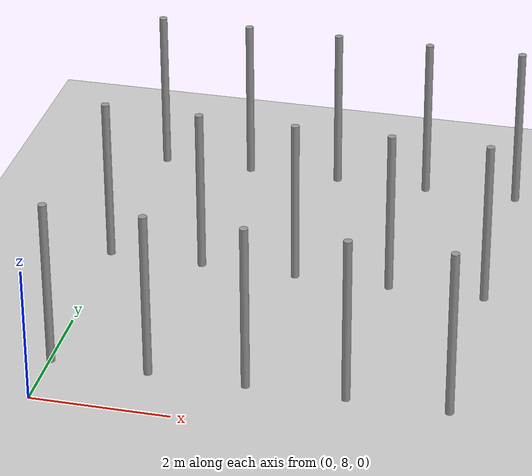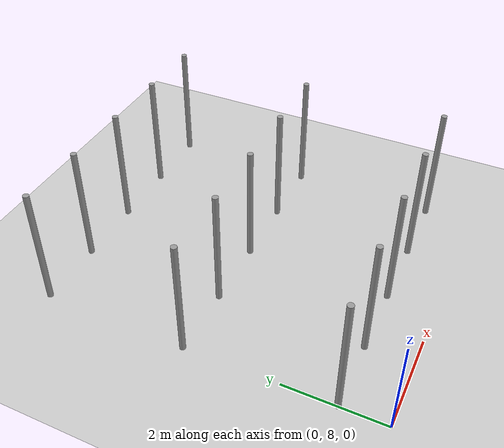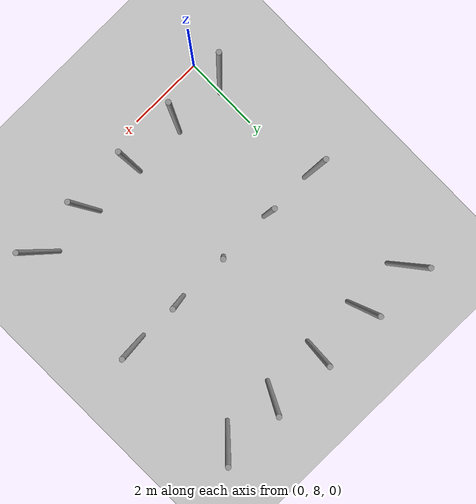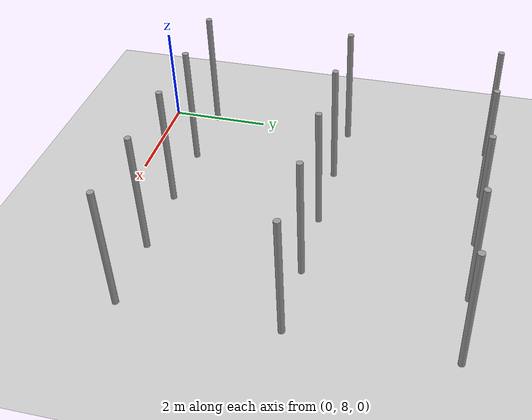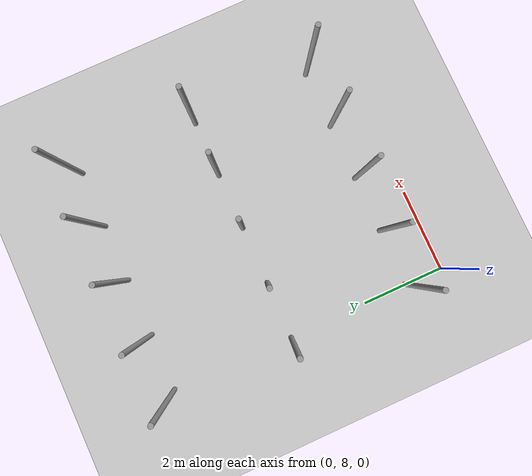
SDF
<sdf version="1.6">
 <world name="default">
  <model name="ground_plane">
   <static>1</static>
   <link name="link">
    <collision name="collision">
     <geometry><plane><normal>0 0 1</normal><size>100 100</size></plane></geometry>
     <surface><friction><ode><mu>100</mu><mu2>50</mu2></ode></friction></surface>
    </collision>
    <visual name="visual">
     <cast_shadows>0</cast_shadows>
     <geometry><plane><normal>0 0 1</normal><size>100 100</size></plane></geometry>
     <material>
      <script><uri>file://media/materials/scripts/gazebo.material</uri><name>Gazebo/Grey</name></script>
     </material>
    </visual>
   </link>
  </model>
  <model name="pole_0">
   <link name="link_0">
    <inertial>
     <mass>0.0364582</mass>
     <inertia>
      <ixx>0.00312124</ixx>
      <ixy>0</ixy>
      <ixz>0</ixz>
      <iyy>0.00312124</iyy>
      <iyz>0</iyz>
      <izz>0.00016615</izz>
     </inertia>
    </inertial>
    <visual name="visual">
     <geometry><cylinder><radius>0.06</radius><length>2.5</length></cylinder></geometry>
     <material>
      <lighting>1</lighting>
      <script><uri>file://media/materials/scripts/gazebo.material</uri><name>Gazebo/Grey</name></script>
      <ambient>0.3 0.3 0.3 1</ambient>
      <diffuse>0.7 0.7 0.7 1</diffuse>
      <specular>0.01 0.01 0.01 1</specular>
      <emissive>0 0 0 1</emissive>
      <shader type="vertex"><normal_map>__default__</normal_map></shader>
     </material>
    </visual>
    <collision name="collision">
     <geometry><cylinder><radius>0.06</radius><length>2.5</length></cylinder></geometry>
     <surface>
      <friction>
       <ode><mu>1</mu><mu2>1</mu2><fdir1>0 0 0</fdir1><slip1>0</slip1><slip2>0</slip2></ode>
       <torsional>
        <coefficient>1</coefficient>
        <patch_radius>0</patch_radius>
        <surface_radius>0</surface_radius>
        <use_patch_radius>1</use_patch_radius>
        <ode><slip>0</slip></ode>
       </torsional>
      </friction>
      <bounce><restitution_coefficient>0</restitution_coefficient><threshold>1e+06</threshold></bounce>
      <contact>
       <collide_without_contact>0</collide_without_contact>
       <collide_without_contact_bitmask>1</collide_without_contact_bitmask>
       <collide_bitmask>1</collide_bitmask>
       <ode>
        <soft_cfm>0</soft_cfm>
        <soft_erp>0.2</soft_erp>
        <kp>1e+13</kp>
        <kd>1</kd>
        <max_vel>0.01</max_vel>
        <min_depth>0</min_depth>
       </ode>
       <bullet>
        <split_impulse>1</split_impulse>
        <split_impulse_penetration_threshold>-0.01</split_impulse_penetration_threshold>
        <soft_cfm>0</soft_cfm>
        <soft_erp>0.2</soft_erp>
        <kp>1e+13</kp>
        <kd>1</kd>
       </bullet>
      </contact>
     </surface>
    </collision>
   </link>
   <static>0</static>
   <pose>0.01347 8.94117 1.25 0 1e-06 -0.015511</pose>
  </model>
  <model name="pole_1">
   <link name="link_0">
    <inertial>
     <mass>0.0364582</mass>
     <inertia>
      <ixx>0.00312124</ixx>
      <ixy>0</ixy>
      <ixz>0</ixz>
      <iyy>0.00312124</iyy>
      <iyz>0</iyz>
      <izz>0.00016615</izz>
     </inertia>
    </inertial>
    <visual name="visual">
     <geometry><cylinder><radius>0.06</radius><length>2.5</length></cylinder></geometry>
     <material>
      <lighting>1</lighting>
      <script><uri>file://media/materials/scripts/gazebo.material</uri><name>Gazebo/Grey</name></script>
      <ambient>0.3 0.3 0.3 1</ambient>
      <diffuse>0.7 0.7 0.7 1</diffuse>
      <specular>0.01 0.01 0.01 1</specular>
      <emissive>0 0 0 1</emissive>
      <shader type="vertex"><normal_map>__default__</normal_map></shader>
     </material>
    </visual>
    <collision name="collision">
     <geometry><cylinder><radius>0.06</radius><length>2.5</length></cylinder></geometry>
     <surface>
      <friction>
       <ode><mu>1</mu><mu2>1</mu2><fdir1>0 0 0</fdir1><slip1>0</slip1><slip2>0</slip2></ode>
       <torsional>
        <coefficient>1</coefficient>
        <patch_radius>0</patch_radius>
        <surface_radius>0</surface_radius>
        <use_patch_radius>1</use_patch_radius>
        <ode><slip>0</slip></ode>
       </torsional>
      </friction>
      <bounce><restitution_coefficient>0</restitution_coefficient><threshold>1e+06</threshold></bounce>
      <contact>
       <collide_without_contact>0</collide_without_contact>
       <collide_without_contact_bitmask>1</collide_without_contact_bitmask>
       <collide_bitmask>1</collide_bitmask>
       <ode>
        <soft_cfm>0</soft_cfm>
        <soft_erp>0.2</soft_erp>
        <kp>1e+13</kp>
        <kd>1</kd>
        <max_vel>0.01</max_vel>
        <min_depth>0</min_depth>
       </ode>
       <bullet>
        <split_impulse>1</split_impulse>
        <split_impulse_penetration_threshold>-0.01</split_impulse_penetration_threshold>
        <soft_cfm>0</soft_cfm>
        <soft_erp>0.2</soft_erp>
        <kp>1e+13</kp>
        <kd>1</kd>
       </bullet>
      </contact>
     </surface>
    </collision>
   </link>
   <static>0</static>
   <pose>-0.00815 11.921 1.25 -1e-06 -0 -0.015413</pose>
  </model>
  <model name="pole_2">
   <link name="link_0">
    <inertial>
     <mass>0.0364582</mass>
     <inertia>
      <ixx>0.00312124</ixx>
      <ixy>0</ixy>
      <ixz>0</ixz>
      <iyy>0.00312124</iyy>
      <iyz>0</iyz>
      <izz>0.00016615</izz>
     </inertia>
    </inertial>
    <visual name="visual">
     <geometry><cylinder><radius>0.06</radius><length>2.5</length></cylinder></geometry>
     <material>
      <lighting>1</lighting>
      <script><uri>file://media/materials/scripts/gazebo.material</uri><name>Gazebo/Grey</name></script>
      <ambient>0.3 0.3 0.3 1</ambient>
      <diffuse>0.7 0.7 0.7 1</diffuse>
      <specular>0.01 0.01 0.01 1</specular>
      <emissive>0 0 0 1</emissive>
      <shader type="vertex"><normal_map>__default__</normal_map></shader>
     </material>
    </visual>
    <collision name="collision">
     <geometry><cylinder><radius>0.06</radius><length>2.5</length></cylinder></geometry>
     <surface>
      <friction>
       <ode><mu>1</mu><mu2>1</mu2><fdir1>0 0 0</fdir1><slip1>0</slip1><slip2>0</slip2></ode>
       <torsional>
        <coefficient>1</coefficient>
        <patch_radius>0</patch_radius>
        <surface_radius>0</surface_radius>
        <use_patch_radius>1</use_patch_radius>
        <ode><slip>0</slip></ode>
       </torsional>
      </friction>
      <bounce><restitution_coefficient>0</restitution_coefficient><threshold>1e+06</threshold></bounce>
      <contact>
       <collide_without_contact>0</collide_without_contact>
       <collide_without_contact_bitmask>1</collide_without_contact_bitmask>
       <collide_bitmask>1</collide_bitmask>
       <ode>
        <soft_cfm>0</soft_cfm>
        <soft_erp>0.2</soft_erp>
        <kp>1e+13</kp>
        <kd>1</kd>
        <max_vel>0.01</max_vel>
        <min_depth>0</min_depth>
       </ode>
       <bullet>
        <split_impulse>1</split_impulse>
        <split_impulse_penetration_threshold>-0.01</split_impulse_penetration_threshold>
        <soft_cfm>0</soft_cfm>
        <soft_erp>0.2</soft_erp>
        <kp>1e+13</kp>
        <kd>1</kd>
       </bullet>
      </contact>
     </surface>
    </collision>
   </link>
   <static>0</static>
   <pose>0.027515 14.894 1.25 0 -1e-06 0.221615</pose>
  </model>
  <model name="pole_16">
   <link name="link_0">
    <inertial>
     <mass>0.0364582</mass>
     <inertia>
      <ixx>0.00312124</ixx>
      <ixy>0</ixy>
      <ixz>0</ixz>
      <iyy>0.00312124</iyy>
      <iyz>0</iyz>
      <izz>0.00016615</izz>
     </inertia>
    </inertial>
    <visual name="visual">
     <geometry><cylinder><radius>0.06</radius><length>2.5</length></cylinder></geometry>
     <material>
      <lighting>1</lighting>
      <script><uri>file://media/materials/scripts/gazebo.material</uri><name>Gazebo/Grey</name></script>
      <ambient>0.3 0.3 0.3 1</ambient>
      <diffuse>0.7 0.7 0.7 1</diffuse>
      <specular>0.01 0.01 0.01 1</specular>
      <emissive>0 0 0 1</emissive>
      <shader type="vertex"><normal_map>__default__</normal_map></shader>
     </material>
    </visual>
    <collision name="collision">
     <geometry><cylinder><radius>0.06</radius><length>2.5</length></cylinder></geometry>
     <surface>
      <friction>
       <ode><mu>1</mu><mu2>1</mu2><fdir1>0 0 0</fdir1><slip1>0</slip1><slip2>0</slip2></ode>
       <torsional>
        <coefficient>1</coefficient>
        <patch_radius>0</patch_radius>
        <surface_radius>0</surface_radius>
        <use_patch_radius>1</use_patch_radius>
        <ode><slip>0</slip></ode>
       </torsional>
      </friction>
      <bounce><restitution_coefficient>0</restitution_coefficient><threshold>1e+06</threshold></bounce>
      <contact>
       <collide_without_contact>0</collide_without_contact>
       <collide_without_contact_bitmask>1</collide_without_contact_bitmask>
       <collide_bitmask>1</collide_bitmask>
       <ode>
        <soft_cfm>0</soft_cfm>
        <soft_erp>0.2</soft_erp>
        <kp>1e+13</kp>
        <kd>1</kd>
        <max_vel>0.01</max_vel>
        <min_depth>0</min_depth>
       </ode>
       <bullet>
        <split_impulse>1</split_impulse>
        <split_impulse_penetration_threshold>-0.01</split_impulse_penetration_threshold>
        <soft_cfm>0</soft_cfm>
        <soft_erp>0.2</soft_erp>
        <kp>1e+13</kp>
        <kd>1</kd>
       </bullet>
      </contact>
     </surface>
    </collision>
   </link>
   <static>0</static>
   <pose>1.41307 8.9404 1.24999 -0 1e-06 -0.009886</pose>
  </model>
  <model name="pole_17">
   <link name="link_0">
    <inertial>
     <mass>0.0364582</mass>
     <inertia>
      <ixx>0.00312124</ixx>
      <ixy>0</ixy>
      <ixz>0</ixz>
      <iyy>0.00312124</iyy>
      <iyz>0</iyz>
      <izz>0.00016615</izz>
     </inertia>
    </inertial>
    <visual name="visual">
     <geometry><cylinder><radius>0.06</radius><length>2.5</length></cylinder></geometry>
     <material>
      <lighting>1</lighting>
      <script><uri>file://media/materials/scripts/gazebo.material</uri><name>Gazebo/Grey</name></script>
      <ambient>0.3 0.3 0.3 1</ambient>
      <diffuse>0.7 0.7 0.7 1</diffuse>
      <specular>0.01 0.01 0.01 1</specular>
      <emissive>0 0 0 1</emissive>
      <shader type="vertex"><normal_map>__default__</normal_map></shader>
     </material>
    </visual>
    <collision name="collision">
     <geometry><cylinder><radius>0.06</radius><length>2.5</length></cylinder></geometry>
     <surface>
      <friction>
       <ode><mu>1</mu><mu2>1</mu2><fdir1>0 0 0</fdir1><slip1>0</slip1><slip2>0</slip2></ode>
       <torsional>
        <coefficient>1</coefficient>
        <patch_radius>0</patch_radius>
        <surface_radius>0</surface_radius>
        <use_patch_radius>1</use_patch_radius>
        <ode><slip>0</slip></ode>
       </torsional>
      </friction>
      <bounce><restitution_coefficient>0</restitution_coefficient><threshold>1e+06</threshold></bounce>
      <contact>
       <collide_without_contact>0</collide_without_contact>
       <collide_without_contact_bitmask>1</collide_without_contact_bitmask>
       <collide_bitmask>1</collide_bitmask>
       <ode>
        <soft_cfm>0</soft_cfm>
        <soft_erp>0.2</soft_erp>
        <kp>1e+13</kp>
        <kd>1</kd>
        <max_vel>0.01</max_vel>
        <min_depth>0</min_depth>
       </ode>
       <bullet>
        <split_impulse>1</split_impulse>
        <split_impulse_penetration_threshold>-0.01</split_impulse_penetration_threshold>
        <soft_cfm>0</soft_cfm>
        <soft_erp>0.2</soft_erp>
        <kp>1e+13</kp>
        <kd>1</kd>
       </bullet>
      </contact>
     </surface>
    </collision>
   </link>
   <static>0</static>
   <pose>2.79983 8.94046 1.25 -1e-06 1e-06 -0.007341</pose>
  </model>
  <model name="pole_18">
   <link name="link_0">
    <inertial>
     <mass>0.0364582</mass>
     <inertia>
      <ixx>0.00312124</ixx>
      <ixy>0</ixy>
      <ixz>0</ixz>
      <iyy>0.00312124</iyy>
      <iyz>0</iyz>
      <izz>0.00016615</izz>
     </inertia>
    </inertial>
    <visual name="visual">
     <geometry><cylinder><radius>0.06</radius><length>2.5</length></cylinder></geometry>
     <material>
      <lighting>1</lighting>
      <script><uri>file://media/materials/scripts/gazebo.material</uri><name>Gazebo/Grey</name></script>
      <ambient>0.3 0.3 0.3 1</ambient>
      <diffuse>0.7 0.7 0.7 1</diffuse>
      <specular>0.01 0.01 0.01 1</specular>
      <emissive>0 0 0 1</emissive>
      <shader type="vertex"><normal_map>__default__</normal_map></shader>
     </material>
    </visual>
    <collision name="collision">
     <geometry><cylinder><radius>0.06</radius><length>2.5</length></cylinder></geometry>
     <surface>
      <friction>
       <ode><mu>1</mu><mu2>1</mu2><fdir1>0 0 0</fdir1><slip1>0</slip1><slip2>0</slip2></ode>
       <torsional>
        <coefficient>1</coefficient>
        <patch_radius>0</patch_radius>
        <surface_radius>0</surface_radius>
        <use_patch_radius>1</use_patch_radius>
        <ode><slip>0</slip></ode>
       </torsional>
      </friction>
      <bounce><restitution_coefficient>0</restitution_coefficient><threshold>1e+06</threshold></bounce>
      <contact>
       <collide_without_contact>0</collide_without_contact>
       <collide_without_contact_bitmask>1</collide_without_contact_bitmask>
       <collide_bitmask>1</collide_bitmask>
       <ode>
        <soft_cfm>0</soft_cfm>
        <soft_erp>0.2</soft_erp>
        <kp>1e+13</kp>
        <kd>1</kd>
        <max_vel>0.01</max_vel>
        <min_depth>0</min_depth>
       </ode>
       <bullet>
        <split_impulse>1</split_impulse>
        <split_impulse_penetration_threshold>-0.01</split_impulse_penetration_threshold>
        <soft_cfm>0</soft_cfm>
        <soft_erp>0.2</soft_erp>
        <kp>1e+13</kp>
        <kd>1</kd>
       </bullet>
      </contact>
     </surface>
    </collision>
   </link>
   <static>0</static>
   <pose>4.20382 8.94051 1.25 -1e-06 -1e-06 -0.005147</pose>
  </model>
  <model name="pole_19">
   <link name="link_0">
    <inertial>
     <mass>0.0364582</mass>
     <inertia>
      <ixx>0.00312124</ixx>
      <ixy>0</ixy>
      <ixz>0</ixz>
      <iyy>0.00312124</iyy>
      <iyz>0</iyz>
      <izz>0.00016615</izz>
     </inertia>
    </inertial>
    <visual name="visual">
     <geometry><cylinder><radius>0.06</radius><length>2.5</length></cylinder></geometry>
     <material>
      <lighting>1</lighting>
      <script><uri>file://media/materials/scripts/gazebo.material</uri><name>Gazebo/Grey</name></script>
      <ambient>0.3 0.3 0.3 1</ambient>
      <diffuse>0.7 0.7 0.7 1</diffuse>
      <specular>0.01 0.01 0.01 1</specular>
      <emissive>0 0 0 1</emissive>
      <shader type="vertex"><normal_map>__default__</normal_map></shader>
     </material>
    </visual>
    <collision name="collision">
     <geometry><cylinder><radius>0.06</radius><length>2.5</length></cylinder></geometry>
     <surface>
      <friction>
       <ode><mu>1</mu><mu2>1</mu2><fdir1>0 0 0</fdir1><slip1>0</slip1><slip2>0</slip2></ode>
       <torsional>
        <coefficient>1</coefficient>
        <patch_radius>0</patch_radius>
        <surface_radius>0</surface_radius>
        <use_patch_radius>1</use_patch_radius>
        <ode><slip>0</slip></ode>
       </torsional>
      </friction>
      <bounce><restitution_coefficient>0</restitution_coefficient><threshold>1e+06</threshold></bounce>
      <contact>
       <collide_without_contact>0</collide_without_contact>
       <collide_without_contact_bitmask>1</collide_without_contact_bitmask>
       <collide_bitmask>1</collide_bitmask>
       <ode>
        <soft_cfm>0</soft_cfm>
        <soft_erp>0.2</soft_erp>
        <kp>1e+13</kp>
        <kd>1</kd>
        <max_vel>0.01</max_vel>
        <min_depth>0</min_depth>
       </ode>
       <bullet>
        <split_impulse>1</split_impulse>
        <split_impulse_penetration_threshold>-0.01</split_impulse_penetration_threshold>
        <soft_cfm>0</soft_cfm>
        <soft_erp>0.2</soft_erp>
        <kp>1e+13</kp>
        <kd>1</kd>
       </bullet>
      </contact>
     </surface>
    </collision>
   </link>
   <static>0</static>
   <pose>5.6293 8.9405 1.24999 0 -1e-06 -0.005665</pose>
  </model>
  <model name="pole_20">
   <link name="link_0">
    <inertial>
     <mass>0.0364582</mass>
     <inertia>
      <ixx>0.00312124</ixx>
      <ixy>0</ixy>
      <ixz>0</ixz>
      <iyy>0.00312124</iyy>
      <iyz>0</iyz>
      <izz>0.00016615</izz>
     </inertia>
    </inertial>
    <visual name="visual">
     <geometry><cylinder><radius>0.06</radius><length>2.5</length></cylinder></geometry>
     <material>
      <lighting>1</lighting>
      <script><uri>file://media/materials/scripts/gazebo.material</uri><name>Gazebo/Grey</name></script>
      <ambient>0.3 0.3 0.3 1</ambient>
      <diffuse>0.7 0.7 0.7 1</diffuse>
      <specular>0.01 0.01 0.01 1</specular>
      <emissive>0 0 0 1</emissive>
      <shader type="vertex"><normal_map>__default__</normal_map></shader>
     </material>
    </visual>
    <collision name="collision">
     <geometry><cylinder><radius>0.06</radius><length>2.5</length></cylinder></geometry>
     <surface>
      <friction>
       <ode><mu>1</mu><mu2>1</mu2><fdir1>0 0 0</fdir1><slip1>0</slip1><slip2>0</slip2></ode>
       <torsional>
        <coefficient>1</coefficient>
        <patch_radius>0</patch_radius>
        <surface_radius>0</surface_radius>
        <use_patch_radius>1</use_patch_radius>
        <ode><slip>0</slip></ode>
       </torsional>
      </friction>
      <bounce><restitution_coefficient>0</restitution_coefficient><threshold>1e+06</threshold></bounce>
      <contact>
       <collide_without_contact>0</collide_without_contact>
       <collide_without_contact_bitmask>1</collide_without_contact_bitmask>
       <collide_bitmask>1</collide_bitmask>
       <ode>
        <soft_cfm>0</soft_cfm>
        <soft_erp>0.2</soft_erp>
        <kp>1e+13</kp>
        <kd>1</kd>
        <max_vel>0.01</max_vel>
        <min_depth>0</min_depth>
       </ode>
       <bullet>
        <split_impulse>1</split_impulse>
        <split_impulse_penetration_threshold>-0.01</split_impulse_penetration_threshold>
        <soft_cfm>0</soft_cfm>
        <soft_erp>0.2</soft_erp>
        <kp>1e+13</kp>
        <kd>1</kd>
       </bullet>
      </contact>
     </surface>
    </collision>
   </link>
   <static>0</static>
   <pose>1.39576 11.9005 1.25 0 2e-06 -0.00358</pose>
  </model>
  <model name="pole_21">
   <link name="link_0">
    <inertial>
     <mass>0.0364582</mass>
     <inertia>
      <ixx>0.00312124</ixx>
      <ixy>0</ixy>
      <ixz>0</ixz>
      <iyy>0.00312124</iyy>
      <iyz>0</iyz>
      <izz>0.00016615</izz>
     </inertia>
    </inertial>
    <visual name="visual">
     <geometry><cylinder><radius>0.06</radius><length>2.5</length></cylinder></geometry>
     <material>
      <lighting>1</lighting>
      <script><uri>file://media/materials/scripts/gazebo.material</uri><name>Gazebo/Grey</name></script>
      <ambient>0.3 0.3 0.3 1</ambient>
      <diffuse>0.7 0.7 0.7 1</diffuse>
      <specular>0.01 0.01 0.01 1</specular>
      <emissive>0 0 0 1</emissive>
      <shader type="vertex"><normal_map>__default__</normal_map></shader>
     </material>
    </visual>
    <collision name="collision">
     <geometry><cylinder><radius>0.06</radius><length>2.5</length></cylinder></geometry>
     <surface>
      <friction>
       <ode><mu>1</mu><mu2>1</mu2><fdir1>0 0 0</fdir1><slip1>0</slip1><slip2>0</slip2></ode>
       <torsional>
        <coefficient>1</coefficient>
        <patch_radius>0</patch_radius>
        <surface_radius>0</surface_radius>
        <use_patch_radius>1</use_patch_radius>
        <ode><slip>0</slip></ode>
       </torsional>
      </friction>
      <bounce><restitution_coefficient>0</restitution_coefficient><threshold>1e+06</threshold></bounce>
      <contact>
       <collide_without_contact>0</collide_without_contact>
       <collide_without_contact_bitmask>1</collide_without_contact_bitmask>
       <collide_bitmask>1</collide_bitmask>
       <ode>
        <soft_cfm>0</soft_cfm>
        <soft_erp>0.2</soft_erp>
        <kp>1e+13</kp>
        <kd>1</kd>
        <max_vel>0.01</max_vel>
        <min_depth>0</min_depth>
       </ode>
       <bullet>
        <split_impulse>1</split_impulse>
        <split_impulse_penetration_threshold>-0.01</split_impulse_penetration_threshold>
        <soft_cfm>0</soft_cfm>
        <soft_erp>0.2</soft_erp>
        <kp>1e+13</kp>
        <kd>1</kd>
       </bullet>
      </contact>
     </surface>
    </collision>
   </link>
   <static>0</static>
   <pose>2.81191 11.8986 1.24998 -0.000141 0.000171 0.058035</pose>
  </model>
  <model name="pole_22">
   <link name="link_0">
    <inertial>
     <mass>0.0364582</mass>
     <inertia>
      <ixx>0.00312124</ixx>
      <ixy>0</ixy>
      <ixz>0</ixz>
      <iyy>0.00312124</iyy>
      <iyz>0</iyz>
      <izz>0.00016615</izz>
     </inertia>
    </inertial>
    <visual name="visual">
     <geometry><cylinder><radius>0.06</radius><length>2.5</length></cylinder></geometry>
     <material>
      <lighting>1</lighting>
      <script><uri>file://media/materials/scripts/gazebo.material</uri><name>Gazebo/Grey</name></script>
      <ambient>0.3 0.3 0.3 1</ambient>
      <diffuse>0.7 0.7 0.7 1</diffuse>
      <specular>0.01 0.01 0.01 1</specular>
      <emissive>0 0 0 1</emissive>
      <shader type="vertex"><normal_map>__default__</normal_map></shader>
     </material>
    </visual>
    <collision name="collision">
     <geometry><cylinder><radius>0.06</radius><length>2.5</length></cylinder></geometry>
     <surface>
      <friction>
       <ode><mu>1</mu><mu2>1</mu2><fdir1>0 0 0</fdir1><slip1>0</slip1><slip2>0</slip2></ode>
       <torsional>
        <coefficient>1</coefficient>
        <patch_radius>0</patch_radius>
        <surface_radius>0</surface_radius>
        <use_patch_radius>1</use_patch_radius>
        <ode><slip>0</slip></ode>
       </torsional>
      </friction>
      <bounce><restitution_coefficient>0</restitution_coefficient><threshold>1e+06</threshold></bounce>
      <contact>
       <collide_without_contact>0</collide_without_contact>
       <collide_without_contact_bitmask>1</collide_without_contact_bitmask>
       <collide_bitmask>1</collide_bitmask>
       <ode>
        <soft_cfm>0</soft_cfm>
        <soft_erp>0.2</soft_erp>
        <kp>1e+13</kp>
        <kd>1</kd>
        <max_vel>0.01</max_vel>
        <min_depth>0</min_depth>
       </ode>
       <bullet>
        <split_impulse>1</split_impulse>
        <split_impulse_penetration_threshold>-0.01</split_impulse_penetration_threshold>
        <soft_cfm>0</soft_cfm>
        <soft_erp>0.2</soft_erp>
        <kp>1e+13</kp>
        <kd>1</kd>
       </bullet>
      </contact>
     </surface>
    </collision>
   </link>
   <static>0</static>
   <pose>4.21204 11.9003 1.24999 -1e-06 -1e-06 -0.002224</pose>
  </model>
  <model name="pole_23">
   <link name="link_0">
    <inertial>
     <mass>0.0364582</mass>
     <inertia>
      <ixx>0.00312124</ixx>
      <ixy>0</ixy>
      <ixz>0</ixz>
      <iyy>0.00312124</iyy>
      <iyz>0</iyz>
      <izz>0.00016615</izz>
     </inertia>
    </inertial>
    <visual name="visual">
     <geometry><cylinder><radius>0.06</radius><length>2.5</length></cylinder></geometry>
     <material>
      <lighting>1</lighting>
      <script><uri>file://media/materials/scripts/gazebo.material</uri><name>Gazebo/Grey</name></script>
      <ambient>0.3 0.3 0.3 1</ambient>
      <diffuse>0.7 0.7 0.7 1</diffuse>
      <specular>0.01 0.01 0.01 1</specular>
      <emissive>0 0 0 1</emissive>
      <shader type="vertex"><normal_map>__default__</normal_map></shader>
     </material>
    </visual>
    <collision name="collision">
     <geometry><cylinder><radius>0.06</radius><length>2.5</length></cylinder></geometry>
     <surface>
      <friction>
       <ode><mu>1</mu><mu2>1</mu2><fdir1>0 0 0</fdir1><slip1>0</slip1><slip2>0</slip2></ode>
       <torsional>
        <coefficient>1</coefficient>
        <patch_radius>0</patch_radius>
        <surface_radius>0</surface_radius>
        <use_patch_radius>1</use_patch_radius>
        <ode><slip>0</slip></ode>
       </torsional>
      </friction>
      <bounce><restitution_coefficient>0</restitution_coefficient><threshold>1e+06</threshold></bounce>
      <contact>
       <collide_without_contact>0</collide_without_contact>
       <collide_without_contact_bitmask>1</collide_without_contact_bitmask>
       <collide_bitmask>1</collide_bitmask>
       <ode>
        <soft_cfm>0</soft_cfm>
        <soft_erp>0.2</soft_erp>
        <kp>1e+13</kp>
        <kd>1</kd>
        <max_vel>0.01</max_vel>
        <min_depth>0</min_depth>
       </ode>
       <bullet>
        <split_impulse>1</split_impulse>
        <split_impulse_penetration_threshold>-0.01</split_impulse_penetration_threshold>
        <soft_cfm>0</soft_cfm>
        <soft_erp>0.2</soft_erp>
        <kp>1e+13</kp>
        <kd>1</kd>
       </bullet>
      </contact>
     </surface>
    </collision>
   </link>
   <static>0</static>
   <pose>5.61604 11.9003 1.25 -1e-06 -1e-06 -0.002446</pose>
  </model>
  <model name="pole_24">
   <link name="link_0">
    <inertial>
     <mass>0.0364582</mass>
     <inertia>
      <ixx>0.00312124</ixx>
      <ixy>0</ixy>
      <ixz>0</ixz>
      <iyy>0.00312124</iyy>
      <iyz>0</iyz>
      <izz>0.00016615</izz>
     </inertia>
    </inertial>
    <visual name="visual">
     <geometry><cylinder><radius>0.06</radius><length>2.5</length></cylinder></geometry>
     <material>
      <lighting>1</lighting>
      <script><uri>file://media/materials/scripts/gazebo.material</uri><name>Gazebo/Grey</name></script>
      <ambient>0.3 0.3 0.3 1</ambient>
      <diffuse>0.7 0.7 0.7 1</diffuse>
      <specular>0.01 0.01 0.01 1</specular>
      <emissive>0 0 0 1</emissive>
      <shader type="vertex"><normal_map>__default__</normal_map></shader>
     </material>
    </visual>
    <collision name="collision">
     <geometry><cylinder><radius>0.06</radius><length>2.5</length></cylinder></geometry>
     <surface>
      <friction>
       <ode><mu>1</mu><mu2>1</mu2><fdir1>0 0 0</fdir1><slip1>0</slip1><slip2>0</slip2></ode>
       <torsional>
        <coefficient>1</coefficient>
        <patch_radius>0</patch_radius>
        <surface_radius>0</surface_radius>
        <use_patch_radius>1</use_patch_radius>
        <ode><slip>0</slip></ode>
       </torsional>
      </friction>
      <bounce><restitution_coefficient>0</restitution_coefficient><threshold>1e+06</threshold></bounce>
      <contact>
       <collide_without_contact>0</collide_without_contact>
       <collide_without_contact_bitmask>1</collide_without_contact_bitmask>
       <collide_bitmask>1</collide_bitmask>
       <ode>
        <soft_cfm>0</soft_cfm>
        <soft_erp>0.2</soft_erp>
        <kp>1e+13</kp>
        <kd>1</kd>
        <max_vel>0.01</max_vel>
        <min_depth>0</min_depth>
       </ode>
       <bullet>
        <split_impulse>1</split_impulse>
        <split_impulse_penetration_threshold>-0.01</split_impulse_penetration_threshold>
        <soft_cfm>0</soft_cfm>
        <soft_erp>0.2</soft_erp>
        <kp>1e+13</kp>
        <kd>1</kd>
       </bullet>
      </contact>
     </surface>
    </collision>
   </link>
   <static>0</static>
   <pose>1.40385 14.8805 1.24999 -3.2e-05 -0.000291 0.024822</pose>
  </model>
  <model name="pole_25">
   <link name="link_0">
    <inertial>
     <mass>0.0364582</mass>
     <inertia>
      <ixx>0.00312124</ixx>
      <ixy>0</ixy>
      <ixz>0</ixz>
      <iyy>0.00312124</iyy>
      <iyz>0</iyz>
      <izz>0.00016615</izz>
     </inertia>
    </inertial>
    <visual name="visual">
     <geometry><cylinder><radius>0.06</radius><length>2.5</length></cylinder></geometry>
     <material>
      <lighting>1</lighting>
      <script><uri>file://media/materials/scripts/gazebo.material</uri><name>Gazebo/Grey</name></script>
      <ambient>0.3 0.3 0.3 1</ambient>
      <diffuse>0.7 0.7 0.7 1</diffuse>
      <specular>0.01 0.01 0.01 1</specular>
      <emissive>0 0 0 1</emissive>
      <shader type="vertex"><normal_map>__default__</normal_map></shader>
     </material>
    </visual>
    <collision name="collision">
     <geometry><cylinder><radius>0.06</radius><length>2.5</length></cylinder></geometry>
     <surface>
      <friction>
       <ode><mu>1</mu><mu2>1</mu2><fdir1>0 0 0</fdir1><slip1>0</slip1><slip2>0</slip2></ode>
       <torsional>
        <coefficient>1</coefficient>
        <patch_radius>0</patch_radius>
        <surface_radius>0</surface_radius>
        <use_patch_radius>1</use_patch_radius>
        <ode><slip>0</slip></ode>
       </torsional>
      </friction>
      <bounce><restitution_coefficient>0</restitution_coefficient><threshold>1e+06</threshold></bounce>
      <contact>
       <collide_without_contact>0</collide_without_contact>
       <collide_without_contact_bitmask>1</collide_without_contact_bitmask>
       <collide_bitmask>1</collide_bitmask>
       <ode>
        <soft_cfm>0</soft_cfm>
        <soft_erp>0.2</soft_erp>
        <kp>1e+13</kp>
        <kd>1</kd>
        <max_vel>0.01</max_vel>
        <min_depth>0</min_depth>
       </ode>
       <bullet>
        <split_impulse>1</split_impulse>
        <split_impulse_penetration_threshold>-0.01</split_impulse_penetration_threshold>
        <soft_cfm>0</soft_cfm>
        <soft_erp>0.2</soft_erp>
        <kp>1e+13</kp>
        <kd>1</kd>
       </bullet>
      </contact>
     </surface>
    </collision>
   </link>
   <static>0</static>
   <pose>2.80769 14.88 1.25 -0 -1e-06 -0.008418</pose>
  </model>
  <model name="pole_26">
   <link name="link_0">
    <inertial>
     <mass>0.0364582</mass>
     <inertia>
      <ixx>0.00312124</ixx>
      <ixy>0</ixy>
      <ixz>0</ixz>
      <iyy>0.00312124</iyy>
      <iyz>0</iyz>
      <izz>0.00016615</izz>
     </inertia>
    </inertial>
    <visual name="visual">
     <geometry><cylinder><radius>0.06</radius><length>2.5</length></cylinder></geometry>
     <material>
      <lighting>1</lighting>
      <script><uri>file://media/materials/scripts/gazebo.material</uri><name>Gazebo/Grey</name></script>
      <ambient>0.3 0.3 0.3 1</ambient>
      <diffuse>0.7 0.7 0.7 1</diffuse>
      <specular>0.01 0.01 0.01 1</specular>
      <emissive>0 0 0 1</emissive>
      <shader type="vertex"><normal_map>__default__</normal_map></shader>
     </material>
    </visual>
    <collision name="collision">
     <geometry><cylinder><radius>0.06</radius><length>2.5</length></cylinder></geometry>
     <surface>
      <friction>
       <ode><mu>1</mu><mu2>1</mu2><fdir1>0 0 0</fdir1><slip1>0</slip1><slip2>0</slip2></ode>
       <torsional>
        <coefficient>1</coefficient>
        <patch_radius>0</patch_radius>
        <surface_radius>0</surface_radius>
        <use_patch_radius>1</use_patch_radius>
        <ode><slip>0</slip></ode>
       </torsional>
      </friction>
      <bounce><restitution_coefficient>0</restitution_coefficient><threshold>1e+06</threshold></bounce>
      <contact>
       <collide_without_contact>0</collide_without_contact>
       <collide_without_contact_bitmask>1</collide_without_contact_bitmask>
       <collide_bitmask>1</collide_bitmask>
       <ode>
        <soft_cfm>0</soft_cfm>
        <soft_erp>0.2</soft_erp>
        <kp>1e+13</kp>
        <kd>1</kd>
        <max_vel>0.01</max_vel>
        <min_depth>0</min_depth>
       </ode>
       <bullet>
        <split_impulse>1</split_impulse>
        <split_impulse_penetration_threshold>-0.01</split_impulse_penetration_threshold>
        <soft_cfm>0</soft_cfm>
        <soft_erp>0.2</soft_erp>
        <kp>1e+13</kp>
        <kd>1</kd>
       </bullet>
      </contact>
     </surface>
    </collision>
   </link>
   <static>0</static>
   <pose>4.21202 14.8801 1.24999 -1e-06 4e-06 -0.00355</pose>
  </model>
  <model name="pole_27">
   <link name="link_0">
    <inertial>
     <mass>0.0364582</mass>
     <inertia>
      <ixx>0.00312124</ixx>
      <ixy>0</ixy>
      <ixz>0</ixz>
      <iyy>0.00312124</iyy>
      <iyz>0</iyz>
      <izz>0.00016615</izz>
     </inertia>
    </inertial>
    <visual name="visual">
     <geometry><cylinder><radius>0.06</radius><length>2.5</length></cylinder></geometry>
     <material>
      <lighting>1</lighting>
      <script><uri>file://media/materials/scripts/gazebo.material</uri><name>Gazebo/Grey</name></script>
      <ambient>0.3 0.3 0.3 1</ambient>
      <diffuse>0.7 0.7 0.7 1</diffuse>
      <specular>0.01 0.01 0.01 1</specular>
      <emissive>0 0 0 1</emissive>
      <shader type="vertex"><normal_map>__default__</normal_map></shader>
     </material>
    </visual>
    <collision name="collision">
     <geometry><cylinder><radius>0.06</radius><length>2.5</length></cylinder></geometry>
     <surface>
      <friction>
       <ode><mu>1</mu><mu2>1</mu2><fdir1>0 0 0</fdir1><slip1>0</slip1><slip2>0</slip2></ode>
       <torsional>
        <coefficient>1</coefficient>
        <patch_radius>0</patch_radius>
        <surface_radius>0</surface_radius>
        <use_patch_radius>1</use_patch_radius>
        <ode><slip>0</slip></ode>
       </torsional>
      </friction>
      <bounce><restitution_coefficient>0</restitution_coefficient><threshold>1e+06</threshold></bounce>
      <contact>
       <collide_without_contact>0</collide_without_contact>
       <collide_without_contact_bitmask>1</collide_without_contact_bitmask>
       <collide_bitmask>1</collide_bitmask>
       <ode>
        <soft_cfm>0</soft_cfm>
        <soft_erp>0.2</soft_erp>
        <kp>1e+13</kp>
        <kd>1</kd>
        <max_vel>0.01</max_vel>
        <min_depth>0</min_depth>
       </ode>
       <bullet>
        <split_impulse>1</split_impulse>
        <split_impulse_penetration_threshold>-0.01</split_impulse_penetration_threshold>
        <soft_cfm>0</soft_cfm>
        <soft_erp>0.2</soft_erp>
        <kp>1e+13</kp>
        <kd>1</kd>
       </bullet>
      </contact>
     </surface>
    </collision>
   </link>
   <static>0</static>
   <pose>5.62 14.88 1.25 -1e-06 -1e-06 -0.001787</pose>
  </model>
 </world>
</sdf>
